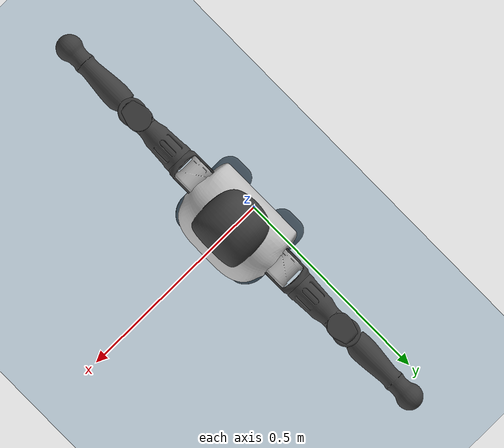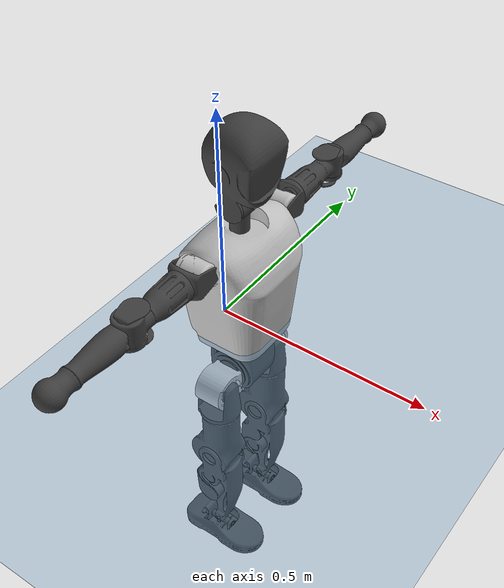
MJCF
<mujoco model="T1">
  <compiler angle="radian" assetdir="assets" balanceinertia="true" inertiafromgeom="false"/>

  <option timestep="0.005" density="1.2" viscosity="2e-05"/>

  <size nkey="1"/>

  <visual>
    <quality shadowsize="8192"/>
    <map shadowclip="0.5"/>
  </visual>

  <default>
    <default class="/">
      <joint armature="0.01" damping="0.01" frictionloss="0.1"/>
      <geom contype="0" conaffinity="0" group="1" solref="-1000 -80"/>
      <site size="0.01 0.005 0.005" group="5"/>
      <general forcelimited="true" biastype="affine" gainprm="25" biasprm="0 -25 -0.6"/>
      <default class="t1">
        <geom rgba="0.25 0.25 0.25 1"/>
        <default class="visual">
          <geom type="mesh" group="2"/>
        </default>
        <default class="collision">
          <geom group="3"/>
        </default>
        <default class="foot">
          <geom size="0.1115 0.05 0.015" type="box" condim="6" group="4" priority="1" solimp="0.015 1 0.015"/>
        </default>
        <default class="reward_collision_sphere">
          <geom group="5" rgba="1 0 0 1"/>
        </default>
      </default>
    </default>
  </default>

  <asset>
    <texture type="skybox" colorspace="auto" name="//unnamed_texture_0" builtin="gradient" rgb1="0.95 0.95 0.95" rgb2="0.95 0.95 0.95" width="100" height="600"/>
    <texture type="2d" colorspace="auto" name="texplane" builtin="checker" rgb1="0.345 0.575 0.748" rgb2="0.345 0.575 0.748" markrgb="1 1 1" width="512" height="512"/>
    <material name="MatPlane" class="/" texture="texplane" texuniform="true" texrepeat="2 2" specular="0.9"/>
    <mesh name="Trunk" class="/" file="Trunk.stl"/>
    <mesh name="H1" class="/" file="H1.stl"/>
    <mesh name="H2" class="/" file="H2.stl"/>
    <mesh name="AL1" class="/" file="AL1.stl"/>
    <mesh name="AL2" class="/" file="AL2.stl"/>
    <mesh name="AL3" class="/" file="AL3.stl"/>
    <mesh name="left_hand_link" class="/" file="left_hand_link.stl"/>
    <mesh name="AR1" class="/" file="AR1.stl"/>
    <mesh name="AR2" class="/" file="AR2.stl"/>
    <mesh name="AR3" class="/" file="AR3.stl"/>
    <mesh name="right_hand_link" class="/" file="right_hand_link.stl"/>
    <mesh name="Waist" class="/" file="Waist.stl"/>
    <mesh name="Hip_Pitch_Left" class="/" file="Hip_Pitch_Left.stl"/>
    <mesh name="Hip_Roll_Left" class="/" file="Hip_Roll_Left.stl"/>
    <mesh name="Hip_Yaw_Left" class="/" file="Hip_Yaw_Left.stl"/>
    <mesh name="Shank_Left" class="/" file="Shank_Left.stl"/>
    <mesh name="Ankle_Cross_Left" class="/" file="Ankle_Cross_Left.stl"/>
    <mesh name="left_foot_link" class="/" file="left_foot_link.stl"/>
    <mesh name="Hip_Pitch_Right" class="/" file="Hip_Pitch_Right.stl"/>
    <mesh name="Hip_Roll_Right" class="/" file="Hip_Roll_Right.stl"/>
    <mesh name="Hip_Yaw_Right" class="/" file="Hip_Yaw_Right.stl"/>
    <mesh name="Shank_Right" class="/" file="Shank_Right.stl"/>
    <mesh name="Ankle_Cross_Right" class="/" file="Ankle_Cross_Right.stl"/>
    <mesh name="right_foot_link" class="/" file="right_foot_link.stl"/>
  </asset>

  <worldbody>
    <geom name="floor" class="/" size="100 100 0.125" type="plane" group="0" material="MatPlane"/>
    <light name="toplight_shadow" class="/" pos="0 0 5" dir="0.0990148 0.0990148 -0.990148" type="directional" ambient="0.04 0.04 0.04" diffuse="0.55 0.55 0.55" specular="0.12 0.12 0.12"/>
    <light name="toplight_fill" class="/" pos="0 0 5" dir="0.0990148 0.0990148 -0.990148" type="directional" castshadow="false" ambient="0.04 0.04 0.04" diffuse="0.3 0.3 0.3" specular="0.08 0.08 0.08"/>
    <body name="trunk" childclass="t1" pos="0.00099149 -0.000815507 -0.000644292" quat="1 -9.39394e-06 -0.000191884 -0.000110242">
      <inertial pos="0.042383 0.000436534 0.108456" quat="0.999957 -0.000231203 -0.00921666 0.000543259" mass="8.04927" diaginertia="0.0255975 0.0364972 0.0668371"/>
      <joint name="//unnamed_joint_0" type="free" armature="0" damping="0" frictionloss="0"/>
      <geom name="//unnamed_geom_1" class="visual" rgba="0.76 0.76 0.76 1" mesh="Trunk"/>
      <geom name="//unnamed_geom_2" class="collision" size="0.0669272 0.0892362 0.133854" pos="0.0465959 0 0.124826" type="box"/>
      <geom name="//unnamed_geom_3" class="reward_collision_sphere" size="0.102622" pos="0.0465959 0 0.104022"/>
      <geom name="//unnamed_geom_4" class="reward_collision_sphere" size="0.0133854" pos="0.0465959 0.0731231 0"/>
      <geom name="//unnamed_geom_5" class="reward_collision_sphere" size="0.0133854" pos="0.0465959 -0.0731231 0"/>
      <geom name="//unnamed_geom_6" class="reward_collision_sphere" size="0.0133854" pos="0.0465959 0.092049 0.187239"/>
      <geom name="//unnamed_geom_7" class="reward_collision_sphere" size="0.0133854" pos="0.0465959 -0.092049 0.187239"/>
      <site name="imu" pos="0.000908422 -0.00730005 0.000296209" size="0.00892362"/>
      <camera name="track" pos="0 -1.72054 0" quat="0.707107 0.707107 0 0" mode="trackcom"/>
      <camera name="ego_camera" pos="0.0947449 0 0.436891" quat="-0.5 -0.5 0.5 0.5"/>
      <body name="H1" pos="0.0474665 -0.000580722 0.251977" quat="1 -0.000114798 -2.88418e-06 -0.00037112">
        <inertial pos="-0.00197626 -0.00140345 0.0593359" quat="0.764696 -0.0151519 -0.0089627 0.644151" mass="0.312253" diaginertia="6.80047e-05 0.000105044 0.000182726"/>
        <joint name="AAHead_yaw" pos="0 0 0" axis="0.00184513 0.00714037 0.999973" stiffness="0.00291327" range="-1.56816 1.57444" armature="0.00867553" damping="0.00896393" frictionloss="0.0881593"/>
        <geom name="//unnamed_geom_8" class="visual" mesh="H1"/>
        <body name="H2" pos="0.000349009 -0.000305341 0.0636247" quat="1 -0.000215454 0.000139341 -0.000141198">
          <inertial pos="0.00560503 -0.00127459 0.10259" quat="0.988443 0.105843 -0.0744214 -0.0789906" mass="0.445117" diaginertia="0.00057227 0.000875052 0.00209151"/>
          <joint name="Head_pitch" pos="0 0 0" axis="-0.00205165 -0.999992 0.00355702" range="-1.22471 0.335887" armature="0.00890181" damping="0.00434733" frictionloss="0.0937528"/>
          <geom name="//unnamed_geom_9" class="visual" mesh="H2"/>
          <geom name="//unnamed_geom_10" class="collision" size="0.071389" pos="0.00776598 0 0.114424"/>
          <geom name="//unnamed_geom_11" class="reward_collision_sphere" size="0.0803126" pos="0.015532 0 0.104022"/>
        </body>
      </body>
      <body name="AL1" pos="0.0466976 0.0926993 0.227853" quat="1 -0.000310805 0.000563049 4.56362e-05">
        <inertial pos="-0.0002631 0.0378608 -0.00201489" quat="0.503712 0.492473 -0.500747 0.502988" mass="0.387942" diaginertia="0.000397938 0.000622844 0.000366202"/>
        <joint name="Left_Shoulder_Pitch" pos="0 0 0" axis="0.000603326 0.999965 -0.00837308" range="-3.30442 1.24006" armature="0.00920663" damping="0.00639617" frictionloss="0.0909298"/>
        <geom name="//unnamed_geom_12" class="visual" rgba="0.76 0.76 0.76 1" mesh="AL1"/>
        <body name="AL2" pos="0.00023893 0.0407039 -0.000695638" quat="0.999999 -0.000452763 -0.000920545 0.000252982">
          <inertial pos="0.00358182 0.0303369 -0.000434796" quat="0.488177 0.511864 -0.488095 0.511314" mass="0.112755" diaginertia="0.000114017 0.000163909 0.000213336"/>
          <joint name="Left_Shoulder_Roll" pos="0 0 0" axis="-0.99996 -0.00884505 0.001514" range="-1.54065 1.75406" armature="0.00939731" damping="0" frictionloss="0.0960157"/>
          <geom name="//unnamed_geom_13" class="visual" mesh="AL2"/>
          <body name="AL3" pos="0.00122605 0.054612 -6.84603e-05" quat="1 0.000288795 -0.00043536 0.000540775">
            <inertial pos="-0.00064245 0.0723458 0.000814108" quat="0.705831 0.708376 -0.00148911 -0.00192969" mass="0.752024" diaginertia="0.00365514 0.00617477 0.000743162"/>
            <joint name="Left_Elbow_Pitch" pos="0 0 0" axis="-0.00249905 -0.999994 0.00245043" range="-2.22873 2.22844" armature="0.00969457" damping="0" frictionloss="0.0915771"/>
            <geom name="//unnamed_geom_14" class="visual" mesh="AL3"/>
            <geom name="//unnamed_geom_15" class="collision" size="0.0267709 0.0669272" pos="0 0.0430136 0" quat="0.707105 0.707108 0 0" type="cylinder"/>
            <geom name="//unnamed_geom_16" class="reward_collision_sphere" size="0.032125"/>
            <body name="left_hand_link" pos="-5.47136e-05 0.12653 -0.000914485" quat="1 2.41202e-06 9.95925e-06 1.29154e-05">
              <inertial pos="-2.40203e-05 0.0938343 -0.000385448" quat="0.707646 0.706564 0.00163549 0.0012064" mass="0.231192" diaginertia="0.00228315 0.00382594 0.000260943"/>
              <joint name="Left_Elbow_Yaw" pos="0 0 0" axis="-0.0010078 0.00229488 0.999997" range="-2.44758 -0.00368474" armature="0.00934619" damping="0.0110507" frictionloss="0.0872294"/>
              <geom name="//unnamed_geom_17" class="visual" mesh="left_hand_link"/>
              <geom name="//unnamed_geom_18" class="collision" size="0.0267709 0.0780817" pos="0 0.111835 0" quat="0.707105 0.707108 0 0" type="cylinder"/>
              <geom name="//unnamed_geom_19" class="reward_collision_sphere" size="0.0446181"/>
              <geom name="//unnamed_geom_20" class="reward_collision_sphere" size="0.0312327" pos="0 0.0946299 0"/>
              <geom name="//unnamed_geom_21" class="reward_collision_sphere" size="0.0312327" pos="0 0.184958 0"/>
            </body>
          </body>
        </body>
      </body>
      <body name="AR1" pos="0.0442971 -0.0920519 0.227449" quat="1 1.38816e-05 0.000287024 -0.000114768">
        <inertial pos="-0.000948069 -0.0404618 0.00155861" quat="0.504228 0.495774 -0.504188 0.495738" mass="0.376051" diaginertia="0.000381413 0.000603853 0.000357438"/>
        <joint name="Right_Shoulder_Pitch" pos="0 0 0" axis="0.00069592 -1 -6.88206e-06" range="-1.21058 3.30779" armature="0.00910506" damping="0.00156727" frictionloss="0.0879137"/>
        <geom name="//unnamed_geom_22" class="visual" rgba="0.76 0.76 0.76 1" mesh="AR1"/>
        <body name="AR2" pos="-0.000667469 -0.0385717 0.000645478" quat="1 6.81849e-05 6.3147e-05 7.23711e-05">
          <inertial pos="0.0027008 -0.0326577 -0.00143221" quat="0.510983 0.487847 -0.513974 0.486551" mass="0.111626" diaginertia="0.000112051 0.000157476 0.000209827"/>
          <joint name="Right_Shoulder_Roll" pos="0 0 0" axis="-0.999962 -0.00235645 0.00839817" stiffness="0.00721235" range="-1.72378 1.60024" armature="0.00901853" damping="0.000139007" frictionloss="0.0896304"/>
          <geom name="//unnamed_geom_23" class="visual" mesh="AR2"/>
          <body name="AR3" pos="-0.000120734 -0.0529032 0.000469913" quat="1 0.000182374 7.23504e-05 8.23643e-05">
            <inertial pos="-0.0014026 -0.0728788 -0.000236648" quat="0.707714 0.706499 -3.44344e-05 0.000152044" mass="0.719903" diaginertia="0.00358668 0.00597547 0.000741509"/>
            <joint name="Right_Elbow_Pitch" pos="0 0 0" axis="0.00353053 0.999985 -0.0042662" range="-2.27752 2.26553" armature="0.00968068" damping="0.00904986" frictionloss="0.0821145"/>
            <geom name="//unnamed_geom_24" class="visual" mesh="AR3"/>
            <geom name="//unnamed_geom_25" class="collision" size="0.0267709 0.0669272" pos="0 -0.0430136 0" quat="0.707105 0.707108 0 0" type="cylinder"/>
            <geom name="//unnamed_geom_26" class="reward_collision_sphere" size="0.032125"/>
            <body name="right_hand_link" pos="-0.000848801 -0.12596 -0.000426784" quat="1 8.52318e-06 9.14346e-06 -3.68148e-05">
              <inertial pos="-8.91722e-05 -0.0946139 -0.00121351" quat="0.708481 0.705667 -0.0060376 0.0072952" mass="0.239766" diaginertia="0.00226378 0.00383378 0.000261118"/>
              <joint name="Right_Elbow_Yaw" pos="0 0 0" axis="-0.00122022 -0.00305759 0.999995" range="-0.0336206 2.47866" armature="0.00885003" damping="0.0123754" frictionloss="0.0857276"/>
              <geom name="//unnamed_geom_27" class="visual" mesh="right_hand_link"/>
              <geom name="//unnamed_geom_28" class="collision" size="0.0267709 0.0780817" pos="0 -0.111835 0" quat="0.707105 0.707108 0 0" type="cylinder"/>
              <geom name="//unnamed_geom_29" class="reward_collision_sphere" size="0.0446181"/>
              <geom name="//unnamed_geom_30" class="reward_collision_sphere" size="0.0312327" pos="0 -0.0946299 0"/>
              <geom name="//unnamed_geom_31" class="reward_collision_sphere" size="0.0312327" pos="0 -0.184958 0"/>
            </body>
          </body>
        </body>
      </body>
      <body name="Waist" pos="0.0477507 -0.00123056 -0.119719" quat="1 -4.33202e-05 9.79468e-05 0.000377022">
        <inertial pos="0.000826696 -0.00095714 0.0070406" quat="0.984015 -0.00208203 -0.178036 0.00352464" mass="1.8404" diaginertia="0.00150131 0.00248175 0.0057747"/>
        <joint name="Waist" pos="0 0 0" axis="0.00058697 0.00714093 0.999974" range="-1.57385 1.56099" armature="0.0084442" damping="0.0185246" frictionloss="0.084295"/>
        <geom name="//unnamed_geom_32" class="visual" mesh="Waist"/>
        <body name="Hip_Pitch_Left" pos="0.000610763 0.0923409 0.00100545" quat="1 -2.23679e-05 0.000126734 0.000306552">
          <inertial pos="0.00275231 -0.00738151 -0.0205759" quat="0.976844 0.213801 0.00799818 0.000609522" mass="0.725375" diaginertia="0.000511357 0.000683738 0.00150497"/>
          <joint name="Left_Hip_Pitch" pos="0 0 0" axis="-0.00199823 0.999994 -0.00295139" range="-1.79925 1.60276" armature="0.00867162" damping="0.000430285" frictionloss="0.0890998"/>
          <geom name="//unnamed_geom_33" class="visual" rgba="0.76 0.76 0.76 1" mesh="Hip_Pitch_Left"/>
          <body name="Hip_Roll_Left" pos="0.00125859 -0.00099884 -0.0196384" quat="1 -6.71321e-05 -1.51619e-05 4.81919e-05">
            <inertial pos="0.00119765 0.000992844 -0.05569" quat="0.706842 -0.00708796 -0.00534761 0.707316" mass="0.262679" diaginertia="0.000490249 0.000688218 0.000609596"/>
            <joint name="Left_Hip_Roll" pos="0 0 0" axis="-0.999979 0.000887027 0.00646548" range="-1.56144 0.183272" armature="0.00909539" damping="0.00915446" frictionloss="0.0881208"/>
            <geom name="//unnamed_geom_34" class="visual" mesh="Hip_Roll_Left"/>
            <geom name="//unnamed_geom_35" class="reward_collision_sphere" size="0.0490799"/>
            <body name="Hip_Yaw_Left" pos="0.00150331 0.000199561 -0.0852488" quat="1 -3.92895e-07 6.50287e-07 -2.50782e-06">
              <inertial pos="-0.00538643 -0.000322201 -0.0933771" quat="0.703343 -0.0358199 -0.0311285 0.709265" mass="1.53923" diaginertia="0.00734546 0.0120566 0.00322781"/>
              <joint name="Left_Hip_Yaw" pos="0 0 0" axis="0.00122798 -0.00547786 -0.999984" range="-1.02339 0.993472" armature="0.00873543" damping="0.00395256" frictionloss="0.0878923"/>
              <geom name="//unnamed_geom_36" class="visual" mesh="Hip_Yaw_Left"/>
              <geom name="//unnamed_geom_37" class="collision" size="0.0446181 0.071389" type="cylinder"/>
              <body name="Shank_Left" pos="-0.00991061 0.00139372 -0.141287" quat="1 -0.000161145 -0.00017449 -0.0001247">
                <inertial pos="-0.00501219 -0.00151434 -0.129394" quat="0.997476 7.49474e-05 -0.023782 0.0668989" mass="1.22496" diaginertia="0.0100224 0.016282 0.00231332"/>
                <joint name="Left_Knee_Pitch" pos="0 0 0" axis="-0.00113596 0.999999 -0.000979199" range="-0.0153911 2.33694" armature="0.0085158" damping="0.00629995" frictionloss="0.0996609"/>
                <geom name="//unnamed_geom_38" class="visual" mesh="Shank_Left"/>
                <geom name="//unnamed_geom_39" class="collision" size="0.0446181 0.0669272" pos="0 0 -0.124826" type="cylinder"/>
                <geom name="//unnamed_geom_40" class="reward_collision_sphere" size="0.0580035"/>
                <body name="Ankle_Cross_Left" pos="-0.00133327 -0.000912956 -0.291733" quat="1 9.7084e-07 4.92394e-06 -4.52301e-06">
                  <inertial pos="-0.00297988 -0.000193502 -0.00877385" quat="0.443133 0.551045 0.550996 0.443155" mass="0.0503216" diaginertia="8.03024e-06 1.14412e-05 1.33447e-05"/>
                  <joint name="Left_Ankle_Pitch" pos="0 0 0" axis="0.00437323 0.999937 -0.0103594" range="-0.849866 0.361479" armature="0.00884036" damping="0.0103315" frictionloss="0.0929671"/>
                  <geom name="//unnamed_geom_41" class="visual" mesh="Ankle_Cross_Left"/>
                  <body name="left_foot_link" pos="-0.00105407 -0.000569482 -0.0125464" quat="0.999999 -0.000878962 -9.49816e-05 -0.000642207">
                    <inertial pos="0.00150901 -0.000148962 -0.00844548" quat="0.00343054 0.621773 -0.00262814 0.783185" mass="0.478325" diaginertia="0.000754 0.00111281 0.00261439"/>
                    <joint name="Left_Ankle_Roll" pos="0 0 0" axis="-0.999997 -0.00238123 -0.000601589" stiffness="0.00141509" range="-0.435221 0.452194" armature="0.00897831" damping="0.00437919" frictionloss="0.0847122"/>
                    <geom name="//unnamed_geom_42" class="visual" mesh="left_foot_link"/>
                    <geom name="left_foot" class="foot" size="0.104307 0.0435218 0.0124875" pos="0.00776598 0 -0.0156033"/>
                    <geom name="//unnamed_geom_44" class="reward_collision_sphere" size="0.0464028" pos="0.00776598 0 -0.0156033"/>
                    <geom name="//unnamed_geom_45" class="reward_collision_sphere" size="0.0267709" pos="0.0737768 -0.0197862 -0.0156033"/>
                    <geom name="//unnamed_geom_46" class="reward_collision_sphere" size="0.0267709" pos="-0.0543618 -0.0197862 -0.0156033"/>
                    <site name="left_foot" class="foot" pos="0.00776598 0 -0.0156033" size="0.00892362"/>
                  </body>
                </body>
              </body>
            </body>
          </body>
        </body>
        <body name="Hip_Pitch_Right" pos="-0.0012881 -0.0906516 0.000482751" quat="1 0.000113589 0.000331983 -0.000149082">
          <inertial pos="0.000908572 0.007414 -0.017612" quat="0.973464 -0.22827 0.0149353 -0.00607834" mass="0.734234" diaginertia="0.000512967 0.000692169 0.00152182"/>
          <joint name="Right_Hip_Pitch" pos="0 0 0" axis="0.00172403 -0.999993 0.00321325" stiffness="0.00260057" range="-1.56891 1.78714" armature="0.00869952" damping="0.00391665" frictionloss="0.0907477"/>
          <geom name="//unnamed_geom_47" class="visual" rgba="0.76 0.76 0.76 1" mesh="Hip_Pitch_Right"/>
          <body name="Hip_Roll_Right" pos="0.000989985 0.000429667 -0.0198957" quat="1 3.90885e-06 -5.40558e-06 6.08996e-05">
            <inertial pos="-2.61937e-05 0.00046879 -0.0565483" quat="0.708221 -0.00301681 -0.00717615 0.705948" mass="0.27775" diaginertia="0.000495322 0.000714196 0.000634222"/>
            <joint name="Right_Hip_Roll" pos="0 0 0" axis="-0.999998 -0.00101557 -0.00161754" range="-0.195772 1.57373" armature="0.00859799" damping="0.00810352" frictionloss="0.0922809"/>
            <geom name="//unnamed_geom_48" class="visual" mesh="Hip_Roll_Right"/>
            <geom name="//unnamed_geom_49" class="reward_collision_sphere" size="0.0490799"/>
            <body name="Hip_Yaw_Right" pos="0.00057024 -0.000486823 -0.0853284" quat="1 -0.000111835 -0.000218961 0.000135336">
              <inertial pos="-0.00491704 -0.00173897 -0.0910174" quat="0.714261 -0.0314114 -0.0340155 0.698346" mass="1.58292" diaginertia="0.0073353 0.0122501 0.00316909"/>
              <joint name="Right_Hip_Yaw" pos="0 0 0" axis="-0.00442084 0.000332379 -0.99999" stiffness="0.00724034" range="-1.00326 1.00811" armature="0.00802354" damping="0.00665938" frictionloss="0.0897248"/>
              <geom name="//unnamed_geom_50" class="visual" mesh="Hip_Yaw_Right"/>
              <geom name="//unnamed_geom_51" class="collision" size="0.0446181 0.071389" type="cylinder"/>
              <body name="Shank_Right" pos="-0.00885896 -0.000938897 -0.138673" quat="1 1.64542e-05 2.8209e-05 -3.31779e-06">
                <inertial pos="-0.00279949 0.00205679 -0.128567" quat="0.999338 -0.000200271 -0.0224237 -0.0286587" mass="1.30509" diaginertia="0.0104828 0.0171056 0.00247166"/>
                <joint name="Right_Knee_Pitch" pos="0 0 0" axis="-0.00216965 -0.999997 -0.00102327" range="-2.34105 0.000974922" armature="0.00860058" damping="0.00924809" frictionloss="0.0855433"/>
                <geom name="//unnamed_geom_52" class="visual" mesh="Shank_Right"/>
                <geom name="//unnamed_geom_53" class="collision" size="0.0446181 0.0669272" pos="0 0 -0.124826" type="cylinder"/>
                <geom name="//unnamed_geom_54" class="reward_collision_sphere" size="0.0580035"/>
                <body name="Ankle_Cross_Right" pos="8.16805e-05 -0.00156791 -0.291536" quat="1 -3.29325e-05 -0.000242901 0.000173706">
                  <inertial pos="-0.00378976 -0.000131376 -0.00839543" quat="0.443941 0.549182 0.549965 0.44593" mass="0.0514833" diaginertia="8.23689e-06 1.20536e-05 1.38901e-05"/>
                  <joint name="Right_Ankle_Pitch" pos="0 0 0" axis="-0.00985603 -0.999924 0.00744591" range="-0.32995 0.871421" armature="0.00882521" damping="0.00658731" frictionloss="0.0852472"/>
                  <geom name="//unnamed_geom_55" class="visual" mesh="Ankle_Cross_Right"/>
                  <body name="right_foot_link" pos="6.53309e-05 -0.00192228 -0.0118733" quat="1 3.85834e-05 -8.06219e-05 7.13216e-06">
                    <inertial pos="0.00197762 0.000136374 -0.00954989" quat="0.00160928 0.622403 0.00130093 0.782694" mass="0.490315" diaginertia="0.00078397 0.00111864 0.00269124"/>
                    <joint name="Right_Ankle_Roll" pos="0 0 0" axis="-0.999975 -0.000196624 -0.00711233" range="-0.438386 0.459345" armature="0.0085047" damping="0.0049345" frictionloss="0.0813969"/>
                    <geom name="//unnamed_geom_56" class="visual" mesh="right_foot_link"/>
                    <geom name="right_foot" class="foot" size="0.0988893 0.0432957 0.0135223" pos="0.00776598 0 -0.0156033"/>
                    <geom name="//unnamed_geom_58" class="reward_collision_sphere" size="0.0356945"/>
                    <geom name="//unnamed_geom_59" class="reward_collision_sphere" size="0.0267709" pos="0.00776598 0 -0.0156033"/>
                    <geom name="//unnamed_geom_60" class="reward_collision_sphere" size="0.0267709" pos="0.0737768 0.0197862 -0.0156033"/>
                    <geom name="//unnamed_geom_61" class="reward_collision_sphere" size="0.0267709" pos="-0.0543618 0.0197862 -0.0156033"/>
                    <site name="right_foot" class="foot" pos="0.00776598 0 -0.0156033" size="0.00892362"/>
                  </body>
                </body>
              </body>
            </body>
          </body>
        </body>
      </body>
    </body>
  </worldbody>

  <contact>
    <pair class="/" geom1="floor" geom2="left_foot" name="//unnamed_contact_0"/>
    <pair class="/" geom1="floor" geom2="right_foot" name="//unnamed_contact_1"/>
  </contact>

  <actuator>
    <general name="AAHead_yaw" class="/" joint="AAHead_yaw" forcerange="-5.93018 5.93018" gainprm="22.724" biasprm="0 -22.724 -0.519819"/>
    <general name="Head_pitch" class="/" joint="Head_pitch" forcerange="-6.00786 6.00786" gainprm="22.724" biasprm="0 -22.724 -0.519819"/>
    <general name="Left_Shoulder_Pitch" class="/" joint="Left_Shoulder_Pitch" forcerange="-15.8355 15.8355" gainprm="22.724" biasprm="0 -22.724 -0.519819"/>
    <general name="Left_Shoulder_Roll" class="/" joint="Left_Shoulder_Roll" forcerange="-15.3888 15.3888" gainprm="22.724" biasprm="0 -22.724 -0.519819"/>
    <general name="Left_Elbow_Pitch" class="/" joint="Left_Elbow_Pitch" forcerange="-16.5515 16.5515" gainprm="22.724" biasprm="0 -22.724 -0.519819"/>
    <general name="Left_Elbow_Yaw" class="/" joint="Left_Elbow_Yaw" forcerange="-17.46 17.46" gainprm="22.724" biasprm="0 -22.724 -0.519819"/>
    <general name="Right_Shoulder_Pitch" class="/" joint="Right_Shoulder_Pitch" forcerange="-16.0992 16.0992" gainprm="22.724" biasprm="0 -22.724 -0.519819"/>
    <general name="Right_Shoulder_Roll" class="/" joint="Right_Shoulder_Roll" forcerange="-16.4844 16.4844" gainprm="22.724" biasprm="0 -22.724 -0.519819"/>
    <general name="Right_Elbow_Pitch" class="/" joint="Right_Elbow_Pitch" forcerange="-15.9684 15.9684" gainprm="22.724" biasprm="0 -22.724 -0.519819"/>
    <general name="Right_Elbow_Yaw" class="/" joint="Right_Elbow_Yaw" forcerange="-15.6166 15.6166" gainprm="22.724" biasprm="0 -22.724 -0.519819"/>
    <general name="Waist" class="/" joint="Waist" forcerange="-26.9173 26.9173" gainprm="22.724" biasprm="0 -22.724 -0.519819"/>
    <general name="Left_Hip_Pitch" class="/" joint="Left_Hip_Pitch" forcerange="-39.5695 39.5695" gainprm="22.724" biasprm="0 -22.724 -0.519819"/>
    <general name="Left_Hip_Roll" class="/" joint="Left_Hip_Roll" forcerange="-26.4018 26.4018" gainprm="22.724" biasprm="0 -22.724 -0.519819"/>
    <general name="Left_Hip_Yaw" class="/" joint="Left_Hip_Yaw" forcerange="-25.8463 25.8463" gainprm="22.724" biasprm="0 -22.724 -0.519819"/>
    <general name="Left_Knee_Pitch" class="/" joint="Left_Knee_Pitch" forcerange="-53.1053 53.1053" gainprm="22.724" biasprm="0 -22.724 -0.519819"/>
    <general name="Left_Ankle_Pitch" class="/" joint="Left_Ankle_Pitch" forcerange="-17.3538 17.3538" gainprm="22.724" biasprm="0 -22.724 -0.519819"/>
    <general name="Left_Ankle_Roll" class="/" joint="Left_Ankle_Roll" forcerange="-13.3549 13.3549" gainprm="22.724" biasprm="0 -22.724 -0.519819"/>
    <general name="Right_Hip_Pitch" class="/" joint="Right_Hip_Pitch" forcerange="-39.5995 39.5995" gainprm="22.724" biasprm="0 -22.724 -0.519819"/>
    <general name="Right_Hip_Roll" class="/" joint="Right_Hip_Roll" forcerange="-26.6528 26.6528" gainprm="22.724" biasprm="0 -22.724 -0.519819"/>
    <general name="Right_Hip_Yaw" class="/" joint="Right_Hip_Yaw" forcerange="-26.9971 26.9971" gainprm="22.724" biasprm="0 -22.724 -0.519819"/>
    <general name="Right_Knee_Pitch" class="/" joint="Right_Knee_Pitch" forcerange="-54.9126 54.9126" gainprm="22.724" biasprm="0 -22.724 -0.519819"/>
    <general name="Right_Ankle_Pitch" class="/" joint="Right_Ankle_Pitch" forcerange="-17.4549 17.4549" gainprm="22.724" biasprm="0 -22.724 -0.519819"/>
    <general name="Right_Ankle_Roll" class="/" joint="Right_Ankle_Roll" forcerange="-13.2135 13.2135" gainprm="22.724" biasprm="0 -22.724 -0.519819"/>
  </actuator>

  <sensor>
    <gyro site="imu" name="imu_angular_velocity"/>
    <velocimeter site="imu" name="imu_linear_velocity"/>
    <framelinvel objtype="site" objname="left_foot" name="left_foot_global_linear_velocity"/>
    <framelinvel objtype="site" objname="right_foot" name="right_foot_global_linear_velocity"/>
  </sensor>

  <keyframe>
    <key name="home" qpos="0 0 0.6385 1 0 0 0 0 0 0 1.4 0 -0.4 0 -1.4 0 0.4 0 -0.4 0 0 0.8 -0.4 0 0.4 0 0 -0.8 0.4 0"/>
  </keyframe>
</mujoco>
